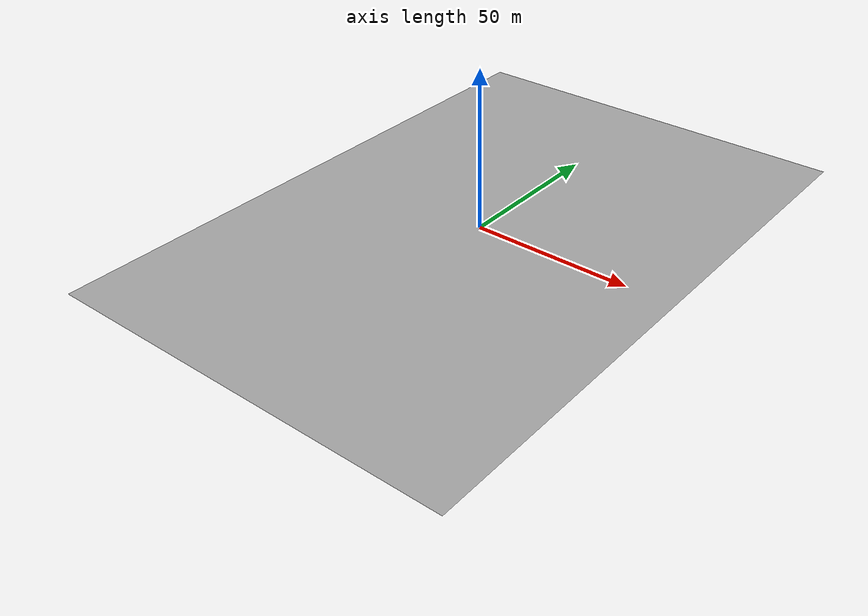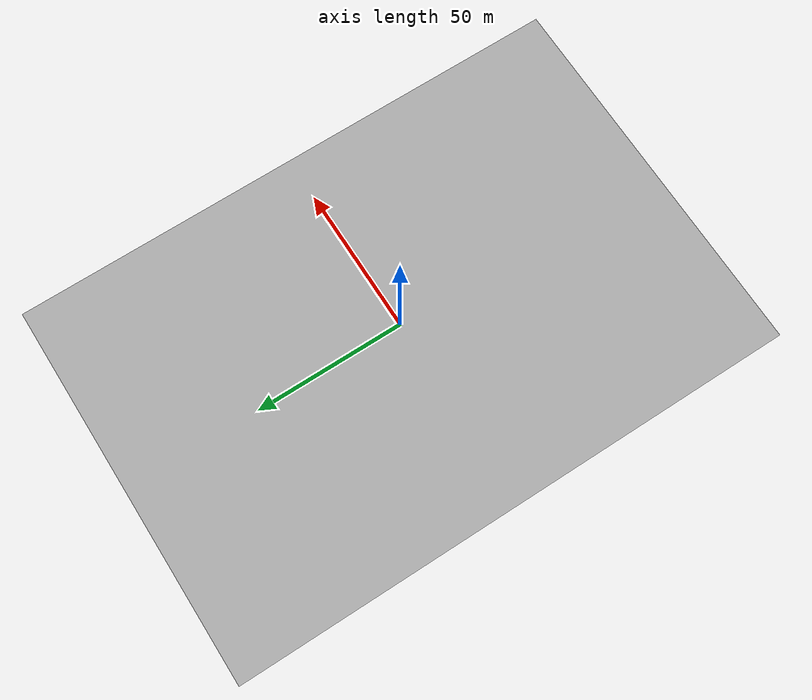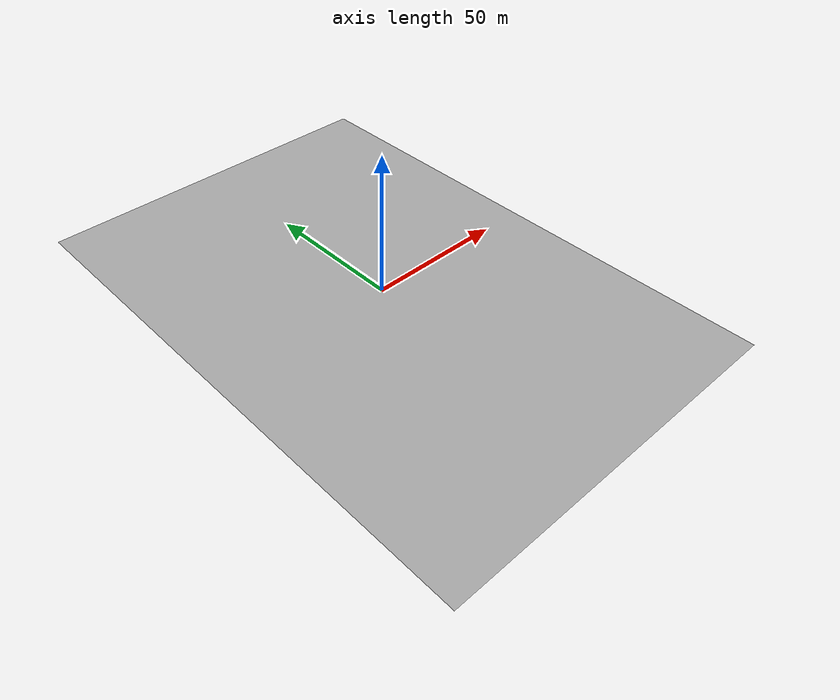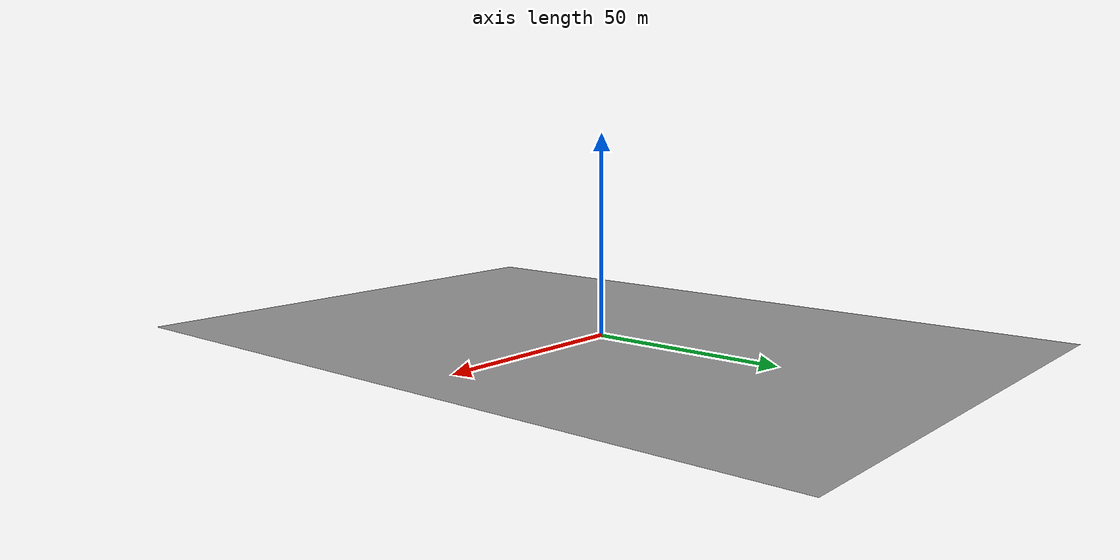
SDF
<?xml version="1.0" ?>
<sdf version="1.4">
  <model name="water_surface">
    <static>true</static>
    <link name="link">
      <pose>0 0 0 0 0 0</pose>
      <must_be_base_link>1</must_be_base_link>
      <collision name="collision">
        <geometry>
          <mesh>
            <uri>model://buoy/meshes/buoy.dae</uri>
          </mesh>
        </geometry>
      </collision>
      <visual name="visual">
        <cast_shadows>false</cast_shadows>
        <geometry>
          <mesh>
            <uri>model://water_surface/meshes/water_surface.dae</uri>
          </mesh>
        </geometry>
      </visual>
    </link>
  </model>
</sdf>
